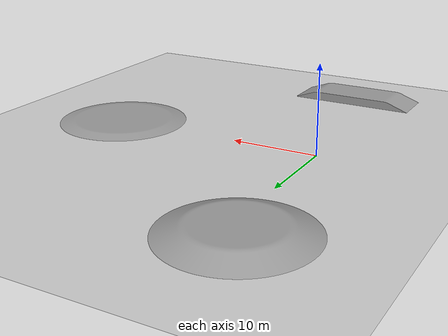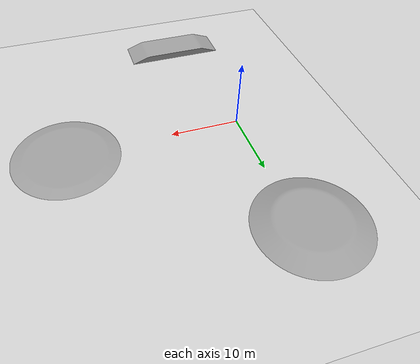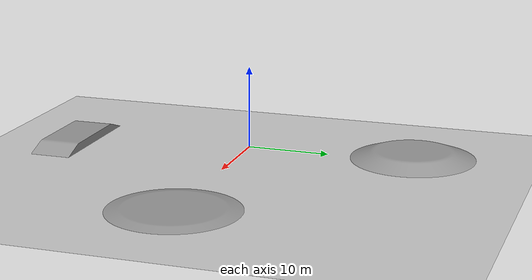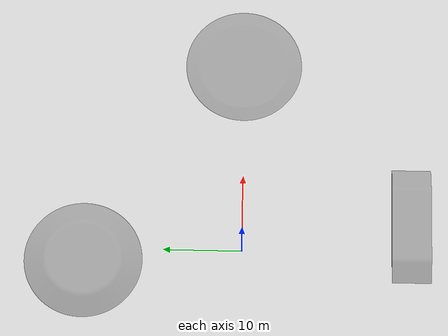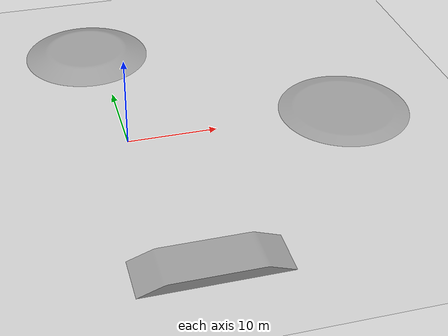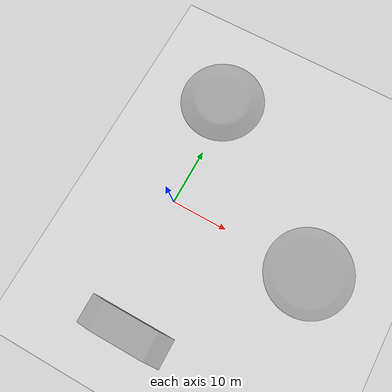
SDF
<sdf version="1.7">
 <world name="default">
  <light name="sun" type="directional">
   <pose>0 0 10 0 -0 0</pose>
   <diffuse>0.8 0.8 0.8 1</diffuse>
   <specular>0.2 0.2 0.2 1</specular>
   <attenuation>
    <range>1000</range>
    <constant>0.9</constant>
    <linear>0.01</linear>
    <quadratic>0.001</quadratic>
   </attenuation>
   <direction>-0.5 0.1 -0.9</direction>
   <spot><inner_angle>0</inner_angle><outer_angle>0</outer_angle><falloff>0</falloff></spot>
  </light>
  <model name="ground_plane">
   <pose>10 0 0 0 -0 0</pose>
   <static>1</static>
   <link name="link">
    <collision name="collision">
     <geometry><plane><normal>0 0 1</normal><size>100 100</size></plane></geometry>
     <surface>
      <contact><collide_bitmask>65535</collide_bitmask></contact>
      <friction><ode><mu>100</mu><mu2>50</mu2></ode></friction>
     </surface>
    </collision>
    <visual name="visual">
     <cast_shadows>0</cast_shadows>
     <geometry><plane><normal>0 0 1</normal><size>100 100</size></plane></geometry>
     <material>
      <script><uri>file://media/materials/scripts/gazebo.material</uri><name>Gazebo/Grey</name></script>
     </material>
    </visual>
   </link>
  </model>
  <gravity>0 0 -9.8</gravity>
  <magnetic_field>6e-06 2.3e-05 -4.2e-05</magnetic_field>
  <atmosphere type="adiabatic"/>
  <physics type="ode">
   <max_step_size>0.001</max_step_size>
   <real_time_factor>1</real_time_factor>
   <real_time_update_rate>1000</real_time_update_rate>
  </physics>
  <scene><ambient>0.4 0.4 0.4 1</ambient><background>0.7 0.7 0.7 1</background><shadows>1</shadows></scene>
  <spherical_coordinates>
   <surface_model>EARTH_WGS84</surface_model>
   <latitude_deg>0</latitude_deg>
   <longitude_deg>0</longitude_deg>
   <elevation>0</elevation>
   <heading_deg>0</heading_deg>
  </spherical_coordinates>
  <model name="disk_ramp">
   <link name="link_2">
    <inertial>
     <mass>1</mass>
     <inertia>
      <ixx>0.166667</ixx>
      <ixy>0</ixy>
      <ixz>0</ixz>
      <iyy>0.166667</iyy>
      <iyz>0</iyz>
      <izz>0.166667</izz>
     </inertia>
    </inertial>
    <visual name="visual">
     <geometry>
      <mesh><uri>/home/sdiehl/catkin_ws/src/bicycle_worlds/meshes/diskV1_1x15.stl</uri><scale>1 1 1</scale></mesh>
     </geometry>
     <material>
      <lighting>1</lighting>
      <script><uri>file://media/materials/scripts/gazebo.material</uri><name>Gazebo/Grey</name></script>
      <shader type="pixel"><normal_map>__default__</normal_map></shader>
      <ambient>0.3 0.3 0.3 1</ambient>
      <diffuse>0.7 0.7 0.7 1</diffuse>
      <specular>0.01 0.01 0.01 1</specular>
      <emissive>0 0 0 1</emissive>
     </material>
    </visual>
    <collision name="collision">
     <geometry>
      <mesh><uri>/home/sdiehl/catkin_ws/src/bicycle_worlds/meshes/diskV1_1x15.stl</uri><scale>1 1 1</scale></mesh>
     </geometry>
     <surface>
      <friction>
       <ode><mu>1</mu><mu2>1</mu2><fdir1>0 0 0</fdir1><slip1>0</slip1><slip2>0</slip2></ode>
       <torsional>
        <coefficient>1</coefficient>
        <patch_radius>0</patch_radius>
        <surface_radius>0</surface_radius>
        <use_patch_radius>1</use_patch_radius>
        <ode><slip>0</slip></ode>
       </torsional>
      </friction>
      <bounce><restitution_coefficient>0</restitution_coefficient><threshold>1e+06</threshold></bounce>
      <contact>
       <collide_without_contact>0</collide_without_contact>
       <collide_without_contact_bitmask>1</collide_without_contact_bitmask>
       <collide_bitmask>1</collide_bitmask>
       <ode>
        <soft_cfm>0</soft_cfm>
        <soft_erp>0.2</soft_erp>
        <kp>1e+13</kp>
        <kd>1</kd>
        <max_vel>0.01</max_vel>
        <min_depth>0</min_depth>
       </ode>
       <bullet>
        <split_impulse>1</split_impulse>
        <split_impulse_penetration_threshold>-0.01</split_impulse_penetration_threshold>
        <soft_cfm>0</soft_cfm>
        <soft_erp>0.2</soft_erp>
        <kp>1e+13</kp>
        <kd>1</kd>
       </bullet>
      </contact>
     </surface>
    </collision>
   </link>
   <static>1</static>
   <pose>-1.53535 20.0909 0 0 -0 0</pose>
  </model>
  <model name="disk_ramp_p3x15">
   <link name="link_3">
    <inertial>
     <mass>1</mass>
     <inertia>
      <ixx>0.166667</ixx>
      <ixy>0</ixy>
      <ixz>0</ixz>
      <iyy>0.166667</iyy>
      <iyz>0</iyz>
      <izz>0.166667</izz>
     </inertia>
    </inertial>
    <pose>-0 4e-06 0 0 -0 0</pose>
    <visual name="visual">
     <geometry>
      <mesh>
       <uri>/home/sdiehl/catkin_ws/src/bicycle_worlds/meshes/disk_ramp_p3x15.stl</uri>
       <scale>1 1 1</scale>
      </mesh>
     </geometry>
     <material>
      <lighting>1</lighting>
      <script><uri>file://media/materials/scripts/gazebo.material</uri><name>Gazebo/Grey</name></script>
      <shader type="pixel"/>
     </material>
    </visual>
    <collision name="collision">
     <geometry>
      <mesh>
       <uri>/home/sdiehl/catkin_ws/src/bicycle_worlds/meshes/disk_ramp_p3x15.stl</uri>
       <scale>1 1 1</scale>
      </mesh>
     </geometry>
     <surface>
      <friction>
       <ode><mu>1</mu><mu2>1</mu2><fdir1>0 0 0</fdir1><slip1>0</slip1><slip2>0</slip2></ode>
       <torsional>
        <coefficient>1</coefficient>
        <patch_radius>0</patch_radius>
        <surface_radius>0</surface_radius>
        <use_patch_radius>1</use_patch_radius>
        <ode><slip>0</slip></ode>
       </torsional>
      </friction>
      <bounce><restitution_coefficient>0</restitution_coefficient><threshold>1e+06</threshold></bounce>
      <contact>
       <collide_without_contact>0</collide_without_contact>
       <collide_without_contact_bitmask>1</collide_without_contact_bitmask>
       <collide_bitmask>1</collide_bitmask>
       <ode>
        <soft_cfm>0</soft_cfm>
        <soft_erp>0.2</soft_erp>
        <kp>1e+13</kp>
        <kd>1</kd>
        <max_vel>0.01</max_vel>
        <min_depth>0</min_depth>
       </ode>
       <bullet>
        <split_impulse>1</split_impulse>
        <split_impulse_penetration_threshold>-0.01</split_impulse_penetration_threshold>
        <soft_cfm>0</soft_cfm>
        <soft_erp>0.2</soft_erp>
        <kp>1e+13</kp>
        <kd>1</kd>
       </bullet>
      </contact>
     </surface>
    </collision>
   </link>
   <static>1</static>
   <pose>25.1539 0.171024 0 0 -0 0</pose>
  </model>
  <model name="ramp">
   <link name="link_1">
    <inertial>
     <mass>1</mass>
     <inertia>
      <ixx>0.166667</ixx>
      <ixy>0</ixy>
      <ixz>0</ixz>
      <iyy>0.166667</iyy>
      <iyz>0</iyz>
      <izz>0.166667</izz>
     </inertia>
    </inertial>
    <pose>2e-06 3e-06 0 0 -0 0</pose>
    <visual name="visual">
     <geometry>
      <mesh>
       <uri>/home/sdiehl/catkin_ws/src/bicycle_worlds/models/ramp_1x15x5/./rampV1_1x15x5.stl</uri>
       <scale>1 1 1</scale>
      </mesh>
     </geometry>
     <material>
      <lighting>1</lighting>
      <script><uri>file://media/materials/scripts/gazebo.material</uri><name>Gazebo/Grey</name></script>
      <shader type="pixel"/>
     </material>
    </visual>
    <collision name="collision">
     <geometry>
      <mesh>
       <uri>/home/sdiehl/catkin_ws/src/bicycle_worlds/models/ramp_1x15x5/./rampV1_1x15x5.stl</uri>
       <scale>1 1 1</scale>
      </mesh>
     </geometry>
     <surface>
      <friction>
       <ode><mu>1</mu><mu2>1</mu2><fdir1>0 0 0</fdir1><slip1>0</slip1><slip2>0</slip2></ode>
       <torsional>
        <coefficient>1</coefficient>
        <patch_radius>0</patch_radius>
        <surface_radius>0</surface_radius>
        <use_patch_radius>1</use_patch_radius>
        <ode><slip>0</slip></ode>
       </torsional>
      </friction>
      <bounce><restitution_coefficient>0</restitution_coefficient><threshold>1e+06</threshold></bounce>
      <contact>
       <collide_without_contact>0</collide_without_contact>
       <collide_without_contact_bitmask>1</collide_without_contact_bitmask>
       <collide_bitmask>1</collide_bitmask>
       <ode>
        <soft_cfm>0</soft_cfm>
        <soft_erp>0.2</soft_erp>
        <kp>1e+13</kp>
        <kd>1</kd>
        <max_vel>0.01</max_vel>
        <min_depth>0</min_depth>
       </ode>
       <bullet>
        <split_impulse>1</split_impulse>
        <split_impulse_penetration_threshold>-0.01</split_impulse_penetration_threshold>
        <soft_cfm>0</soft_cfm>
        <soft_erp>0.2</soft_erp>
        <kp>1e+13</kp>
        <kd>1</kd>
       </bullet>
      </contact>
     </surface>
    </collision>
   </link>
   <static>1</static>
   <pose>-3.78894 -19.0557 0 0 -0 0</pose>
  </model>
 </world>
</sdf>
